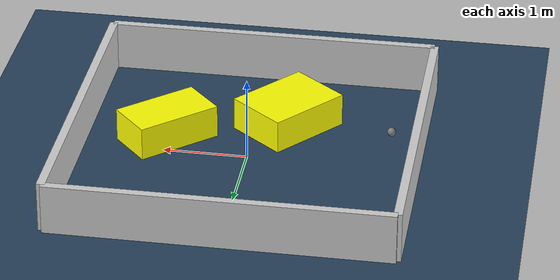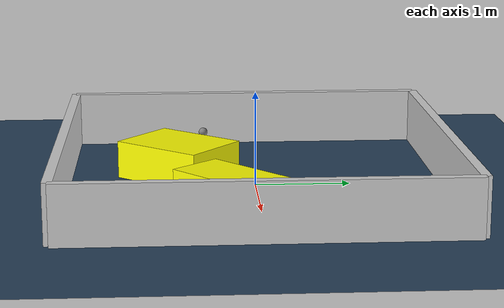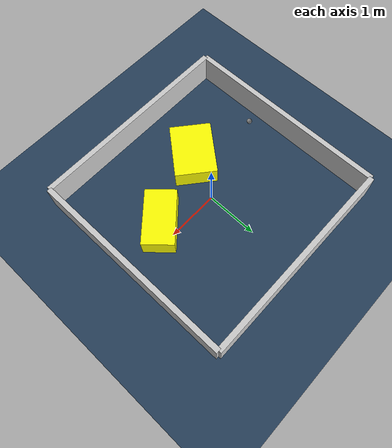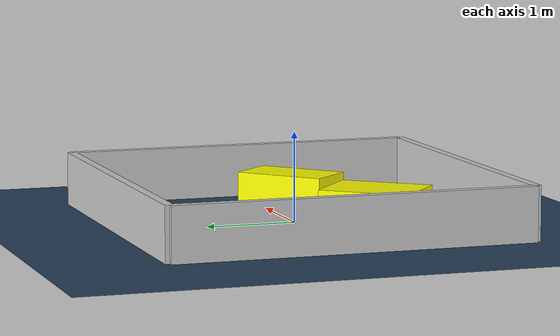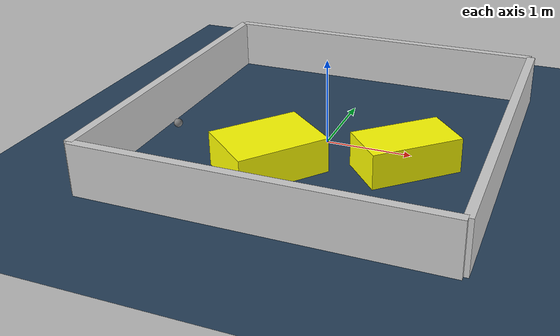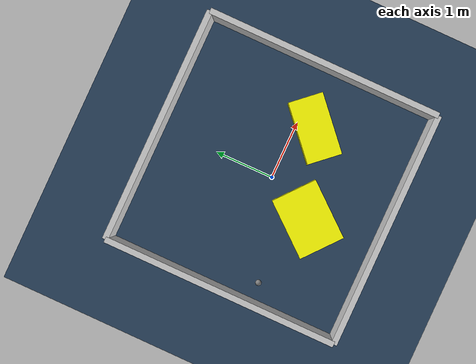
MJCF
<?xml version="1.0" ?>
<mujoco model="generated_environment">
  <option timestep="0.01" integrator="RK4" cone="elliptic"/>
  <default>
    <geom density="1"/>
  </default>
  <asset>
    <texture builtin="gradient" height="3072" rgb1="0.3 0.5 0.7" rgb2="0 0 0" type="skybox" width="512"/>
    <texture builtin="checker" height="300" mark="edge" markrgb="0.8 0.8 0.8" name="groundplane" rgb1="0.2 0.3 0.4" rgb2="0.1 0.2 0.3" type="2d" width="300"/>
    <material name="groundplane" reflectance="0.2" texrepeat="5 5" texture="groundplane" texuniform="true"/>
    <material name="robot" rgba="0.0 1.0 0.0 1"/>
  </asset>
  <worldbody>
    <light dir="0 0 -1" directional="true" pos="0 0 1.5"/>
    <geom condim="4" friction="1.0 0.005 0.001" material="groundplane" name="floor" size="0 0 0.05" type="plane"/>
    <body name="walls">
      <geom name="wall_1" condim="4" pos="-2.0 0.0 0.3" rgba="0.800000011920929 0.800000011920929 0.800000011920929 1.0" size="0.05 2.0 0.3" type="box"/>
      <geom name="wall_2" condim="4" pos="2.0 0.0 0.3" rgba="0.800000011920929 0.800000011920929 0.800000011920929 1.0" size="0.05 2.0 0.3" type="box"/>
      <geom name="wall_3" condim="4" pos="0.0 -2.0 0.3" rgba="0.800000011920929 0.800000011920929 0.800000011920929 1.0" size="2.0 0.05 0.3" type="box"/>
      <geom name="wall_4" condim="4" pos="0.0 2.0 0.3" rgba="0.800000011920929 0.800000011920929 0.800000011920929 1.0" size="2.0 0.05 0.3" type="box"/>
    </body>
    <body name="robot">
      <joint name="joint_x" type="slide" pos="0 0 0" axis="1 0 0"/>
      <joint name="joint_y" type="slide" pos="0 0 0" axis="0 1 0"/>
      <geom name="robot" type="sphere" pos="-1.6514369022869857 -0.515706355405446 0.2" size="0.05" mass="5." friction="1.0 0.005 0.0001" condim="4"/>
      <site name="sensor_ball"/>
    </body>
    <body name="obstacle_1_movable">
      <geom name="obstacle_1_movable" condim="4" pos="-0.3714855301636826 -0.80785184715407 0.2" euler="0 0 320.383677236527" friction="1.0 0.005 0.001" rgba="1 1 0 1" size="0.3914395472876109 0.5209884807763263 0.2" type="box" mass="0.1"/>
      <joint type="free"/>
    </body>
    <body name="obstacle_2_movable">
      <geom name="obstacle_2_movable" condim="4" pos="1.0103723114456165 -0.3008309522349326 0.2" euler="0 0 222.03775034648802" friction="1.0 0.005 0.001" rgba="1 1 0 1" size="0.522934601446319 0.29317529501793704 0.2" type="box" mass="0.1"/>
      <joint type="free"/>
    </body>
  </worldbody>
  <actuator>
    <motor name="actuator_x" joint="joint_x" gear="1" ctrlrange="-1 1"/>
    <motor name="actuator_y" joint="joint_y" gear="1" ctrlrange="-1 1"/>
  </actuator>
</mujoco>
